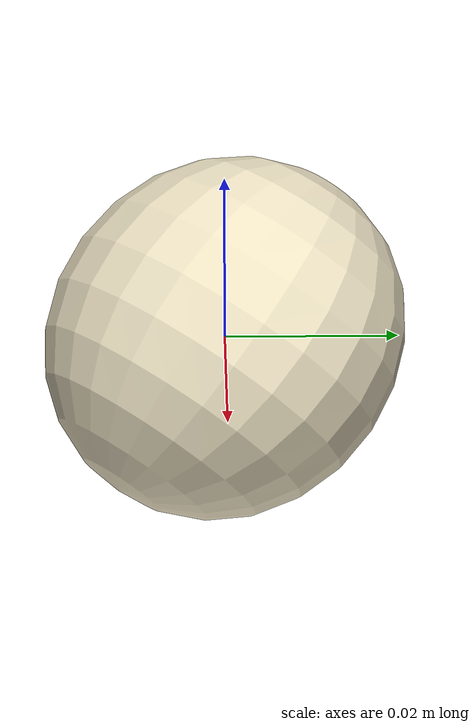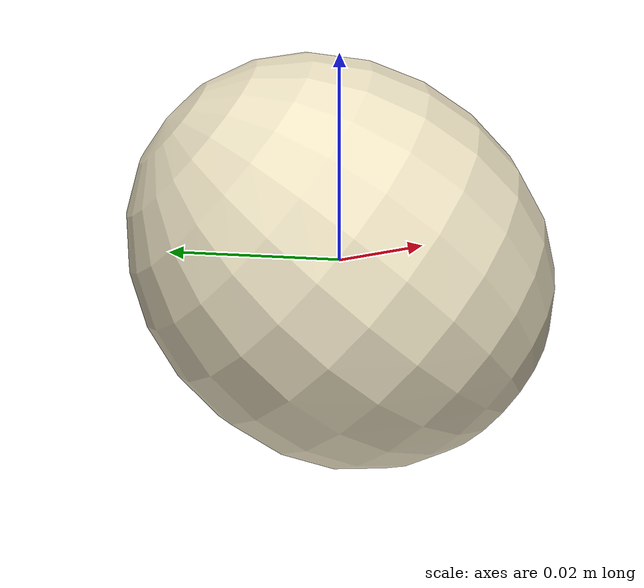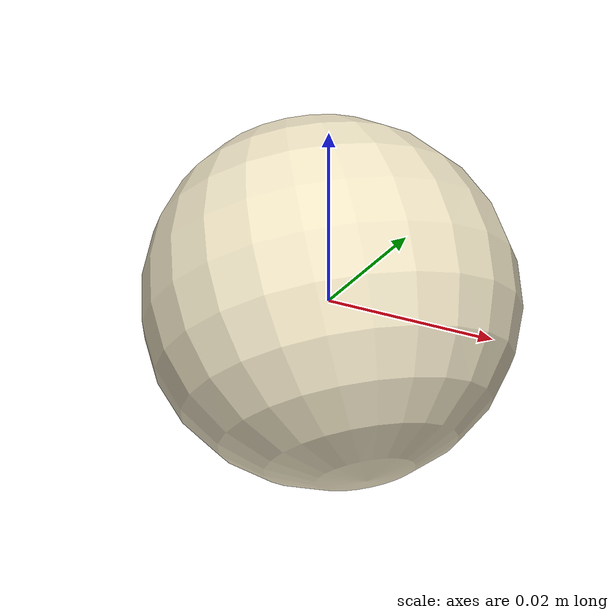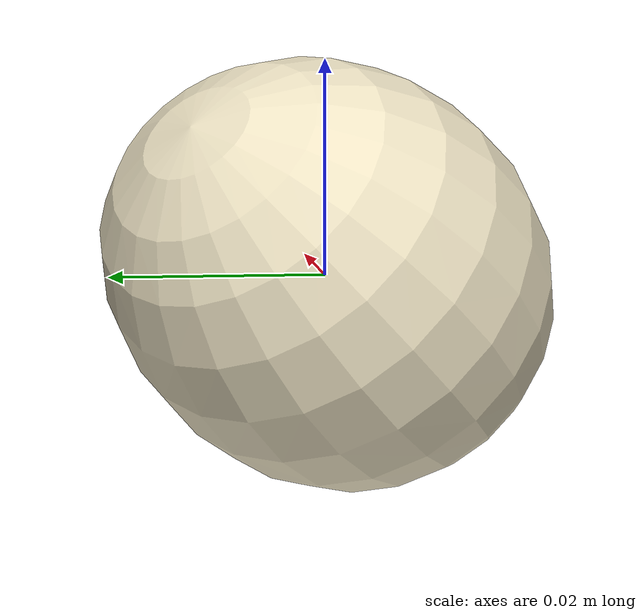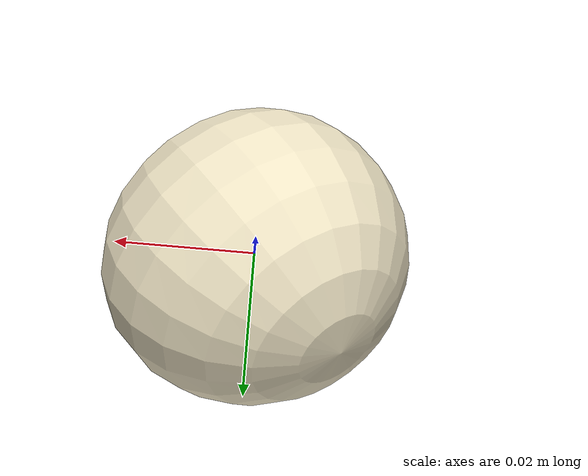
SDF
<?xml version="1.0"?>
<sdf version="1.7">
  <model name="cotton_pick_C_05">
    <static>false</static>
    <allow_auto_disable>false</allow_auto_disable>
    <link name="cotton_pick_C_05_link">
      <gravity>false</gravity>
      <self_collide>false</self_collide>
      <inertial>
        <mass>0.01200</mass>
        <inertia>
          <ixx>0.00000161</ixx>
          <iyy>0.00000161</iyy>
          <izz>0.00000161</izz>
          <ixy>0</ixy>
          <ixz>0</ixz>
          <iyz>0</iyz>
        </inertia>
      </inertial>
      <visual name="cotton_pick_C_05_visual">
        <geometry>
          <mesh>
            <uri>model://cotton_pick_C_05/meshes/cotton_pick_C_05.dae</uri>
          </mesh>
        </geometry>
      </visual>
      <collision name="cotton_pick_C_05_sphere_collision">
        <geometry>
          <sphere>
            <radius>0.01831</radius>
          </sphere>
        </geometry>
        <surface>
          <friction>
            <ode>
              <mu>1.6</mu>
              <mu2>1.6</mu2>
            </ode>
          </friction>
          <contact>
            <ode>
              <kp>8000</kp>
              <kd>80</kd>
            </ode>
          </contact>
        </surface>
      </collision>
    </link>
  </model>
</sdf>
